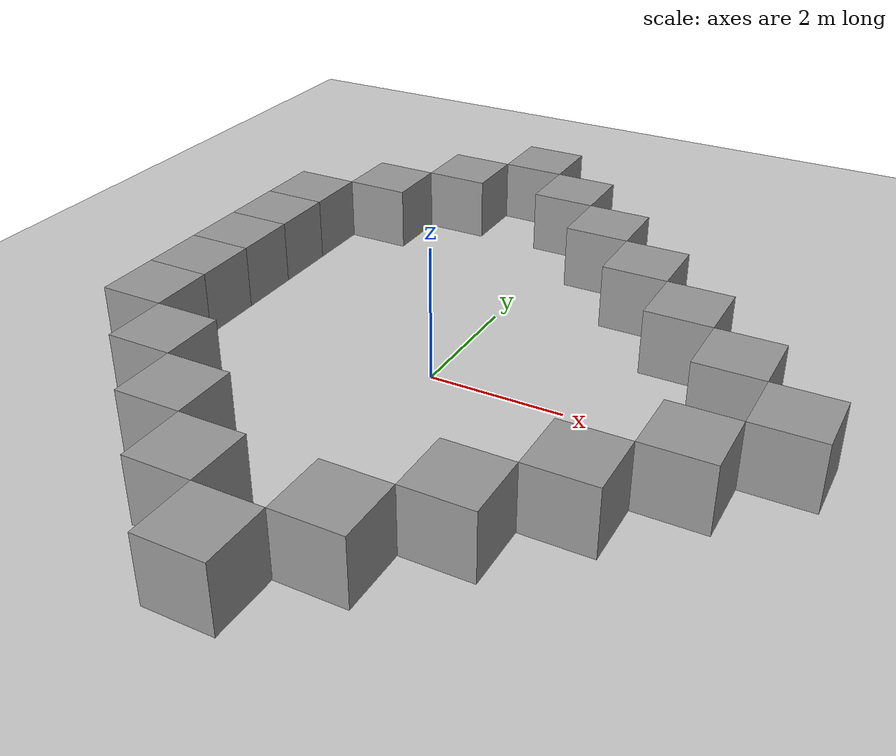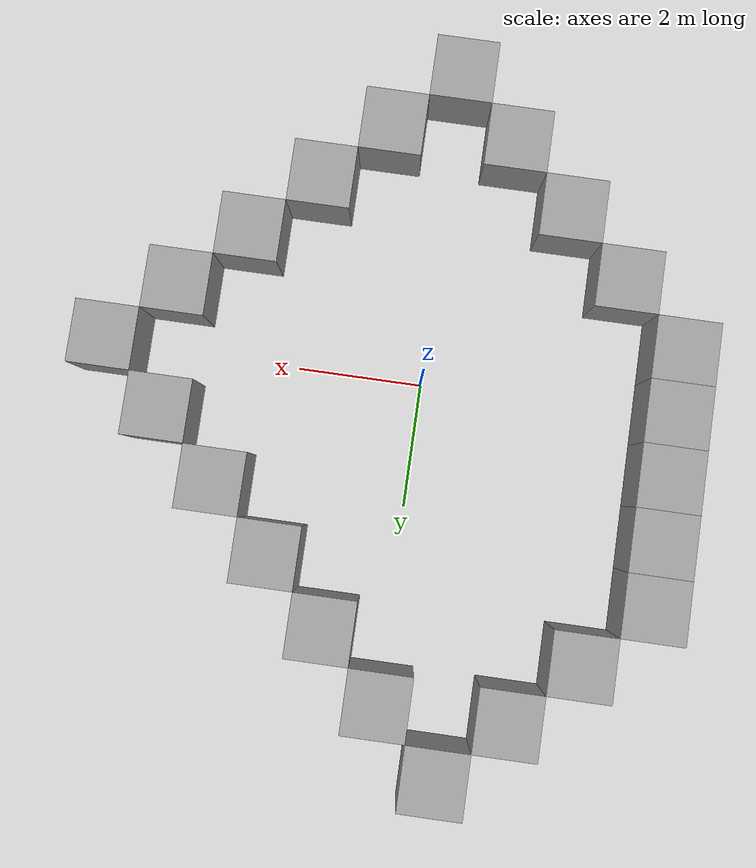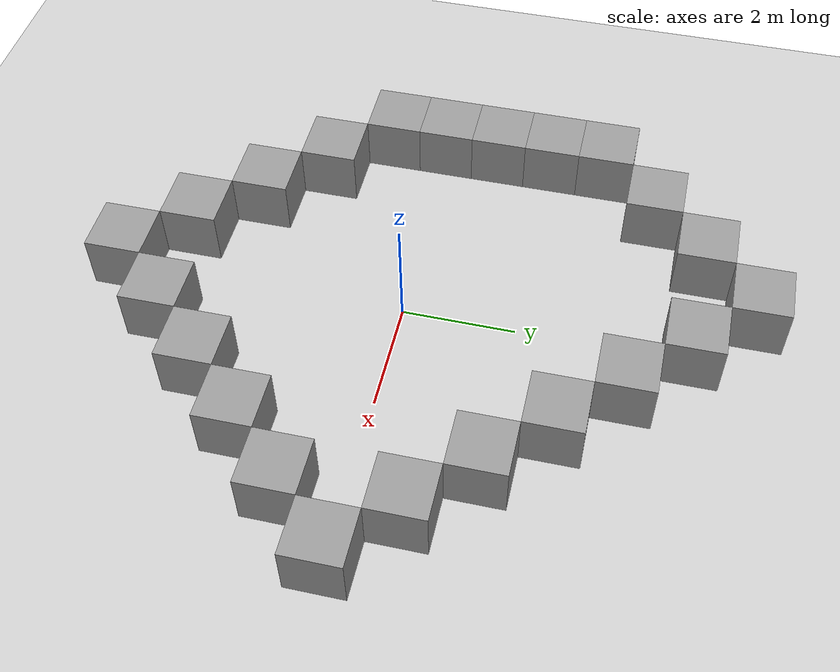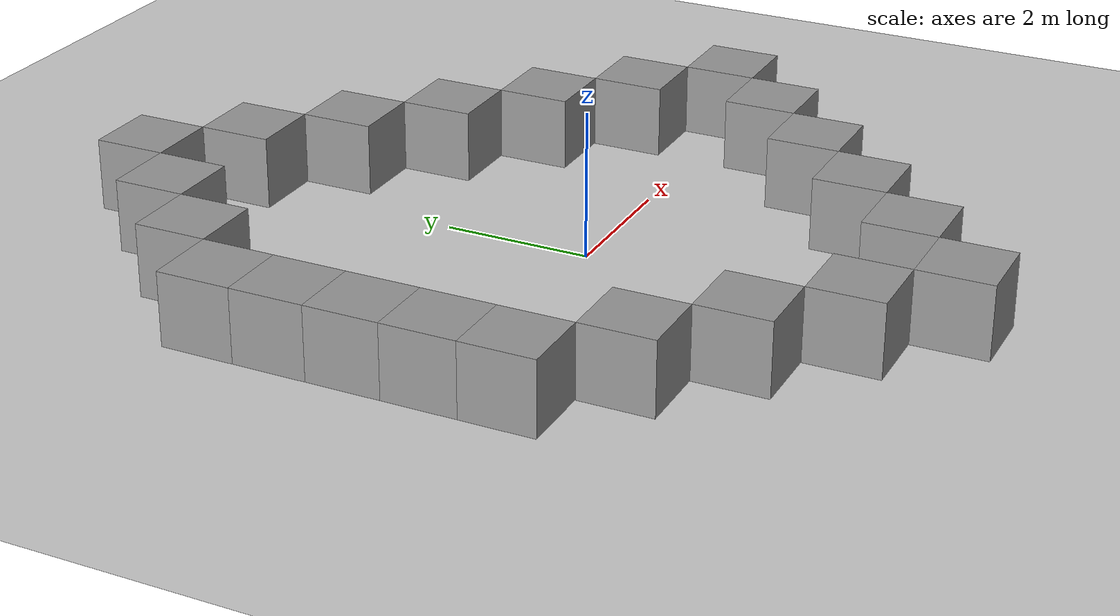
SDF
<?xml version="1.0"?>
<sdf version="1.5">
  <world name="default">
    <gui>
      <camera name='user_default'>
        <pose>16 0 12 0 0.6 -3.141</pose>
      </camera>
    </gui>

    <include>
      <uri>model://ground_plane</uri>
    </include>

    <include>
      <uri>model://sun</uri>
    </include>

    <light type="directional" name="my_light0">
      <pose>0 0 30 0 0 0</pose>
      <diffuse>0.5 0.5 0.5 1</diffuse>
      <specular>0.1 0.1 0.1 1</specular>
      <direction>0.1 0.1 -0.9</direction>
      <attenuation>
        <range>20</range>
        <linear>0.01</linear>
        <constant>0.5</constant>
        <quadratic>0.001</quadratic>
      </attenuation>
      <cast_shadows>1</cast_shadows>
    </light>

<!-- SIMPLE BLOCK WORLD -->
    <include>
      <pose>0 0 0 0 0 0</pose>
      <static>1</static>
      <uri>model://simple_block_world</uri>
    </include>
    <plugin name="USARGazebo" filename="libUSARGazebo.so">
      <StartPose_1>Point1 0,0,0.3 0,0,3.14</StartPose_1>
      <StartPose_2>Point2 0,1,0.3 0,0,1.57</StartPose_2>
      <StartPose_3>Point3 1,0,0.3 0,0,-1.57</StartPose_3>
      <StartPose_4>Point4 1,1,0.3 0,0,0</StartPose_4>
      <GroundTruth>True</GroundTruth>
    </plugin>
-->

  </world>
</sdf>

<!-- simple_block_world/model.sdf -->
<sdf version="1.5">
  <model name="Simple_Block_World">
    <static>true</static>
    <include>
      <pose>5 0 0.5 0 0 0</pose>
      <static>1</static>
      <uri>model://box_gazebo_generated</uri>
    </include>
    <include>
      <pose>4 -1 0.5 0 0 0</pose>
      <static>1</static>
      <uri>model://box_gazebo_generated</uri>
    </include>
    <include>
      <pose>3 -2 0.5 0 0 0</pose>
      <static>1</static>
      <uri>model://box_gazebo_generated</uri>
    </include>
    <include>
      <pose>2 -3 0.5 0 0 0</pose>
      <static>1</static>
      <uri>model://box_gazebo_generated</uri>
    </include>
    <include>
      <pose>1 -4 0.5 0 0 0</pose>
      <static>1</static>
      <uri>model://box_gazebo_generated</uri>
    </include>
    <include>
      <pose>0 -5 0.5 0 0 0</pose>
      <static>1</static>
      <uri>model://box_gazebo_generated</uri>
    </include>
    <include>
      <pose>-1 -4 0.5 0 0 0</pose>
      <static>1</static>
      <uri>model://box_gazebo_generated</uri>
    </include>
    <include>
      <pose>-2 -3 0.5 0 0 0</pose>
      <static>1</static>
      <uri>model://box_gazebo_generated</uri>
    </include>
    <include>
      <pose>-3 -2 0.5 0 0 0</pose>
      <static>1</static>
      <uri>model://box_gazebo_generated</uri>
    </include>
    <include>
      <pose>-4 -1 0.5 0 0 0</pose>
      <static>1</static>
      <uri>model://box_gazebo_generated</uri>
    </include>
    <include>
      <pose>-4 0 0.5 0 0 0</pose>
      <static>1</static>
      <uri>model://box_gazebo_generated</uri>
    </include>
    <include>
      <pose>-4 0 0.5 0 0 0</pose>
      <static>1</static>
      <uri>model://box_gazebo_generated</uri>
    </include>
    <include>
      <pose>-4 1 0.5 0 0 0</pose>
      <static>1</static>
      <uri>model://box_gazebo_generated</uri>
    </include>
    <include>
      <pose>-4 2 0.5 0 0 0</pose>
      <static>1</static>
      <uri>model://box_gazebo_generated</uri>
    </include>
    <include>
      <pose>-4 3 0.5 0 0 0</pose>
      <static>1</static>
      <uri>model://box_gazebo_generated</uri>
    </include>
    <include>
      <pose>-3 4 0.5 0 0 0</pose>
      <static>1</static>
      <uri>model://box_gazebo_generated</uri>
    </include>
    <include>
      <pose>4 1 0.5 0 0 0</pose>
      <static>1</static>
      <uri>model://box_gazebo_generated</uri>
    </include>
    <include>
      <pose>3 2 0.5 0 0 0</pose>
      <static>1</static>
      <uri>model://box_gazebo_generated</uri>
    </include>
    <include>
      <pose>2 3 0.5 0 0 0</pose>
      <static>1</static>
      <uri>model://box_gazebo_generated</uri>
    </include>
    <include>
      <pose>1 4 0.5 0 0 0</pose>
      <static>1</static>
      <uri>model://box_gazebo_generated</uri>
    </include>
    <include>
      <pose>-2 5 0.5 0 0 0</pose>
      <static>1</static>
      <uri>model://box_gazebo_generated</uri>
    </include>
    <include>
      <pose>0 5 0.5 0 0 0</pose>
      <static>1</static>
      <uri>model://box_gazebo_generated</uri>
    </include>
    <include>
      <pose>-1 6 0.5 0 0 0</pose>
      <static>1</static>
      <uri>model://box_gazebo_generated</uri>
    </include>
  </model>
</sdf>

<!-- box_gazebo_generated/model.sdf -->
<sdf version="1.5">
  <model name="BOX_gazebo_generated">
    <pose>0 0 0 0 0 0</pose>
    <static>false</static>

    <link name='link'>
      <inertial>
        <mass>1</mass>
        <inertia>
          <ixx>0.166667</ixx>
          <ixy>0</ixy>
          <ixz>0</ixz>
          <iyy>0.166667</iyy>
          <iyz>0</iyz>
          <izz>0.166667</izz>
        </inertia>
      </inertial>
      <collision name='collision'>
        <geometry>
          <box>
            <size>1 1 1</size>
          </box>
        </geometry>
        <max_contacts>10</max_contacts>
        <surface>
          <contact>
            <ode/>
          </contact>
          <bounce/>
          <friction>
            <ode/>
          </friction>
        </surface>
      </collision>
      <visual name='visual'>
        <geometry>
          <box>
            <size>1 1 1</size>
        </box>
      </geometry>
      <material>
        <script>
          <name>Gazebo/Grey</name>
          <uri>file://media/materials/scripts/gazebo.material</uri>
        </script>
      </material>
      </visual>
      <self_collide>0</self_collide>
      <kinematic>0</kinematic>
      <gravity>1</gravity>
    </link>

  </model>
</sdf>
